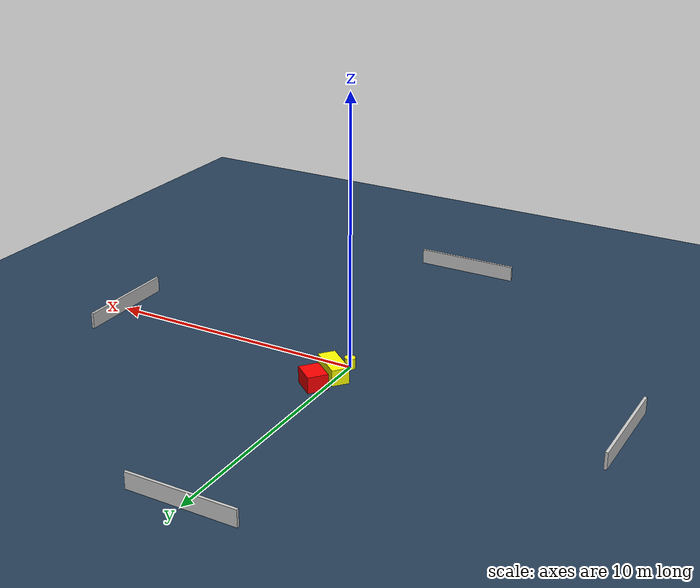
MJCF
<?xml version="1.0" ?>
<mujoco model="generated_environment">
  <option timestep="0.01" integrator="RK4" cone="elliptic"/>
  <default>
    <geom density="1"/>
  </default>
  <asset>
    <texture builtin="gradient" height="3072" name="skybox" rgb1="0.3 0.5 0.7" rgb2="0 0 0" type="skybox" width="512"/>
    <texture builtin="checker" height="300" name="groundplane" rgb1="0.2 0.3 0.4" rgb2="0.1 0.2 0.3" type="2d" width="300"/>
    <material name="groundplane" reflectance="0.2" texrepeat="5 5" texture="groundplane"/>
  </asset>
  <worldbody>
    <light dir="0 0 -1" directional="true" pos="0 0 1.5"/>
    <geom condim="3" friction="0.5 0.005 0.001" material="groundplane" name="floor" pos="0 0 0" size="0 0 0.05" type="plane"/>
    <body name="walls">
      <geom name="wall_1" condim="4" pos="-10.0 0.0 0.3" rgba="0.800000011920929 0.800000011920929 0.800000011920929 1.0" size="0.05 2.0 0.3" type="box"/>
      <geom name="wall_2" condim="4" pos="10.0 0.0 0.3" rgba="0.800000011920929 0.800000011920929 0.800000011920929 1.0" size="0.05 2.0 0.3" type="box"/>
      <geom name="wall_3" condim="4" pos="0.0 -10.0 0.3" rgba="0.800000011920929 0.800000011920929 0.800000011920929 1.0" size="2.0 0.05 0.3" type="box"/>
      <geom name="wall_4" condim="4" pos="0.0 10.0 0.3" rgba="0.800000011920929 0.800000011920929 0.800000011920929 1.0" size="2.0 0.05 0.3" type="box"/>
    </body>
    <body name="robot">
      <joint name="joint_x" type="slide" pos="0 0 0" axis="1 0 0"/>
      <joint name="joint_y" type="slide" pos="0 0 0" axis="0 1 0"/>
      <geom name="robot" type="cylinder" pos="0.0 0.0 0.2" size="0.2 0.2 0.0" mass="5.0" friction="1.0 0.005 0.0001" condim="4" rgba="1.0 1.0 0.0 1.0"/>
    </body>
    <body name="obstacle_1_movable">
      <geom name="obstacle_1_movable" condim="4" pos="0.1843556846082428 0.8457388275157163 0.3" euler="0 0 230.70384509987528" friction="0.0 0.005 0.001" rgba="1.0 1.0 0.0 1.0" size="0.32437608344981994 0.7041083398960664 0.3" type="box" mass="0.1"/>
      <joint type="free"/>
    </body>
    <body name="obstacle_2_static">
      <geom name="obstacle_2_static" condim="4" pos="0.4297197097257282 1.8116664879459738 0.3" euler="0 0 321.30515874137336" friction="0.0 0.005 0.001" rgba="1.0 0.0 0.0 1.0" size="0.46904501677722327 0.37423536123730716 0.3" type="box"/>
    </body>
  </worldbody>
  <actuator>
    <motor name="actuator_x" joint="joint_x" gear="1" ctrlrange="-1 1"/>
    <motor name="actuator_y" joint="joint_y" gear="1" ctrlrange="-1 1"/>
  </actuator>
</mujoco>
